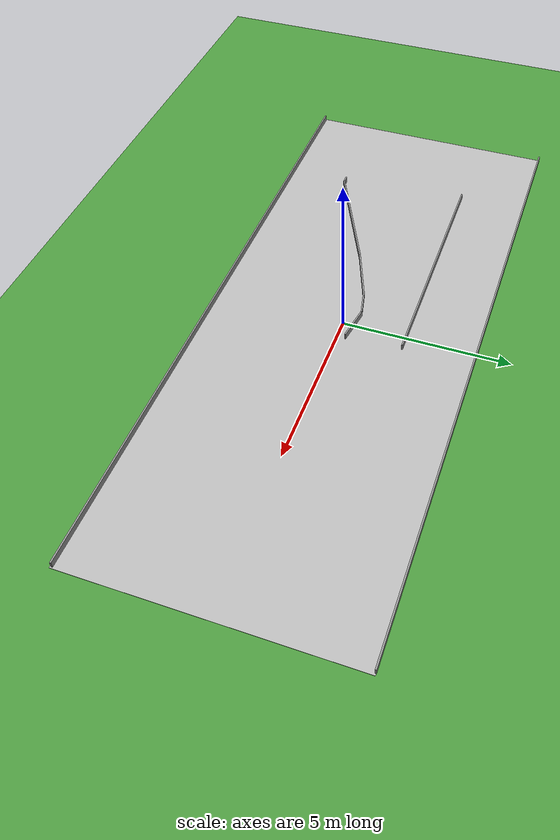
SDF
<sdf version="1.5">
 <world name="default">
  <model name="ground_grass">
   <static>1</static>
   <link name="ground_grass">
    <collision name="collision">
     <geometry><plane><normal>0 0 1</normal><size>50 50</size></plane></geometry>
     <surface><friction><ode><mu>100</mu><mu2>50</mu2></ode></friction></surface>
    </collision>
    <visual name="visual_ground">
     <cast_shadows>0</cast_shadows>
     <pose>0 0 0.005 0 -0 0</pose>
     <geometry><plane><normal>0 0 1</normal><size>50 50</size></plane></geometry>
     <material>
      <script>
       <uri>model://ground_grass/materials/scripts</uri>
       <uri>model://ground_grass/materials/textures</uri>
       <name>Floor/Grass</name>
      </script>
     </material>
    </visual>
    <velocity_decay><linear>0</linear><angular>0</angular></velocity_decay>
   </link>
  </model>
  <model name="ucsd_track_v1">
   <static>1</static>
   <link name="link_track">
    <collision name="collision">
     <geometry><plane><normal>0 0 1</normal><size>19.431 8.0264</size></plane></geometry>
     <surface><friction><ode><mu>100</mu><mu2>50</mu2></ode></friction></surface>
    </collision>
    <visual name="visual_ground">
     <cast_shadows>0</cast_shadows>
     <pose>0 0 0.005 0 -0 0</pose>
     <geometry><plane><normal>0 0 1</normal><size>19.431 8.0264</size></plane></geometry>
     <material>
      <script>
       <uri>model://ucsd_track_v1/materials/scripts</uri>
       <uri>model://ucsd_track_v1/materials/textures</uri>
       <name>Floor/Image</name>
      </script>
     </material>
    </visual>
    <velocity_decay><linear>0</linear><angular>0</angular></velocity_decay>
   </link>
   <pose>0 0 0.001 0 -0 0</pose>
  </model>
  <model name="grey_wall_3">
   <link name="link">
    <pose>0.713484 -0.011654 1.4 0 -0 0</pose>
    <inertial>
     <inertia><ixx>nan</ixx><ixy>0</ixy><ixz>0</ixz><iyy>nan</iyy><iyz>0</iyz><izz>nan</izz></inertia>
     <mass>0</mass>
    </inertial>
    <visual name="visual">
     <cast_shadows>0</cast_shadows>
     <geometry><box><size>19.3332 0.043266 0.226147</size></box></geometry>
     <material>
      <script>
       <uri>model://grey_wall/materials/scripts</uri>
       <uri>model://grey_wall/materials/textures</uri>
       <name>vrc/grey_wall</name>
      </script>
      <ambient>1 1 1 1</ambient>
      <diffuse>1 1 1 1</diffuse>
      <specular>0 0 0 1</specular>
      <emissive>0 0 0 1</emissive>
     </material>
    </visual>
    <collision name="collision">
     <geometry><box><size>19.3332 0.043266 0.226147</size></box></geometry>
     <surface>
      <friction>
       <ode><mu>1</mu><mu2>1</mu2><fdir1>0 0 0</fdir1><slip1>0</slip1><slip2>0</slip2></ode>
       <torsional>
        <coefficient>1</coefficient>
        <patch_radius>0</patch_radius>
        <surface_radius>0</surface_radius>
        <use_patch_radius>1</use_patch_radius>
        <ode><slip>0</slip></ode>
       </torsional>
      </friction>
      <bounce><restitution_coefficient>0</restitution_coefficient><threshold>1e+06</threshold></bounce>
      <contact>
       <collide_without_contact>0</collide_without_contact>
       <collide_without_contact_bitmask>1</collide_without_contact_bitmask>
       <collide_bitmask>1</collide_bitmask>
       <ode>
        <soft_cfm>0</soft_cfm>
        <soft_erp>0.2</soft_erp>
        <kp>1e+13</kp>
        <kd>1</kd>
        <max_vel>0.01</max_vel>
        <min_depth>0</min_depth>
       </ode>
       <bullet>
        <split_impulse>1</split_impulse>
        <split_impulse_penetration_threshold>-0.01</split_impulse_penetration_threshold>
        <soft_cfm>0</soft_cfm>
        <soft_erp>0.2</soft_erp>
        <kp>1e+13</kp>
        <kd>1</kd>
       </bullet>
      </contact>
     </surface>
    </collision>
   </link>
   <static>1</static>
   <pose>-0.716038 4.0109 -1.30508 0 -0 0</pose>
  </model>
  <model name="grey_wall_4">
   <link name="link">
    <pose>0.713484 -0.011654 1.4 0 -0 0</pose>
    <inertial>
     <inertia><ixx>nan</ixx><ixy>0</ixy><ixz>0</ixz><iyy>nan</iyy><iyz>0</iyz><izz>nan</izz></inertia>
     <mass>0</mass>
    </inertial>
    <visual name="visual">
     <cast_shadows>0</cast_shadows>
     <geometry><box><size>19.3332 0.043266 0.226147</size></box></geometry>
     <material>
      <script>
       <uri>model://grey_wall/materials/scripts</uri>
       <uri>model://grey_wall/materials/textures</uri>
       <name>vrc/grey_wall</name>
      </script>
      <ambient>1 1 1 1</ambient>
      <diffuse>1 1 1 1</diffuse>
      <specular>0 0 0 1</specular>
      <emissive>0 0 0 1</emissive>
     </material>
    </visual>
    <collision name="collision">
     <geometry><box><size>19.3332 0.043266 0.226147</size></box></geometry>
     <surface>
      <friction>
       <ode><mu>1</mu><mu2>1</mu2><fdir1>0 0 0</fdir1><slip1>0</slip1><slip2>0</slip2></ode>
       <torsional>
        <coefficient>1</coefficient>
        <patch_radius>0</patch_radius>
        <surface_radius>0</surface_radius>
        <use_patch_radius>1</use_patch_radius>
        <ode><slip>0</slip></ode>
       </torsional>
      </friction>
      <bounce><restitution_coefficient>0</restitution_coefficient><threshold>1e+06</threshold></bounce>
      <contact>
       <collide_without_contact>0</collide_without_contact>
       <collide_without_contact_bitmask>1</collide_without_contact_bitmask>
       <collide_bitmask>1</collide_bitmask>
       <ode>
        <soft_cfm>0</soft_cfm>
        <soft_erp>0.2</soft_erp>
        <kp>1e+13</kp>
        <kd>1</kd>
        <max_vel>0.01</max_vel>
        <min_depth>0</min_depth>
       </ode>
       <bullet>
        <split_impulse>1</split_impulse>
        <split_impulse_penetration_threshold>-0.01</split_impulse_penetration_threshold>
        <soft_cfm>0</soft_cfm>
        <soft_erp>0.2</soft_erp>
        <kp>1e+13</kp>
        <kd>1</kd>
       </bullet>
      </contact>
     </surface>
    </collision>
   </link>
   <static>1</static>
   <pose>-0.701966 -3.93959 -1.30508 0 -0 0</pose>
  </model>
  <model name="grey_wall_25">
   <link name="link">
    <pose>0.017817 -0.013769 1.4 0 -0 0.455224</pose>
    <inertial>
     <inertia><ixx>nan</ixx><ixy>0</ixy><ixz>0</ixz><iyy>nan</iyy><iyz>0</iyz><izz>nan</izz></inertia>
     <mass>0</mass>
    </inertial>
    <visual name="visual">
     <cast_shadows>0</cast_shadows>
     <geometry><box><size>3.81606 0.043266 0.226147</size></box></geometry>
     <material>
      <script>
       <uri>model://grey_wall/materials/scripts</uri>
       <uri>model://grey_wall/materials/textures</uri>
       <name>vrc/grey_wall</name>
      </script>
      <ambient>1 1 1 1</ambient>
      <diffuse>1 1 1 1</diffuse>
      <specular>0 0 0 1</specular>
      <emissive>0 0 0 1</emissive>
     </material>
    </visual>
    <collision name="collision">
     <geometry><box><size>3.81606 0.043266 0.226147</size></box></geometry>
     <surface>
      <friction>
       <ode><mu>1</mu><mu2>1</mu2><fdir1>0 0 0</fdir1><slip1>0</slip1><slip2>0</slip2></ode>
       <torsional>
        <coefficient>1</coefficient>
        <patch_radius>0</patch_radius>
        <surface_radius>0</surface_radius>
        <use_patch_radius>1</use_patch_radius>
        <ode><slip>0</slip></ode>
       </torsional>
      </friction>
      <bounce><restitution_coefficient>0</restitution_coefficient><threshold>1e+06</threshold></bounce>
      <contact>
       <collide_without_contact>0</collide_without_contact>
       <collide_without_contact_bitmask>1</collide_without_contact_bitmask>
       <collide_bitmask>1</collide_bitmask>
       <ode>
        <soft_cfm>0</soft_cfm>
        <soft_erp>0.2</soft_erp>
        <kp>1e+13</kp>
        <kd>1</kd>
        <max_vel>0.01</max_vel>
        <min_depth>0</min_depth>
       </ode>
       <bullet>
        <split_impulse>1</split_impulse>
        <split_impulse_penetration_threshold>-0.01</split_impulse_penetration_threshold>
        <soft_cfm>0</soft_cfm>
        <soft_erp>0.2</soft_erp>
        <kp>1e+13</kp>
        <kd>1</kd>
       </bullet>
      </contact>
     </surface>
    </collision>
   </link>
   <static>1</static>
   <pose>-4.49945 -1.20909 -1.30331 0 -0 0</pose>
  </model>
  <model name="grey_wall_26">
   <link name="link">
    <pose>0.696537 0.076716 1.4 0 -0 0.222578</pose>
    <inertial>
     <inertia><ixx>nan</ixx><ixy>0</ixy><ixz>0</ixz><iyy>nan</iyy><iyz>0</iyz><izz>nan</izz></inertia>
     <mass>0</mass>
    </inertial>
    <visual name="visual">
     <cast_shadows>0</cast_shadows>
     <geometry><box><size>0.800766 0.043266 0.226147</size></box></geometry>
     <material>
      <script>
       <uri>model://grey_wall/materials/scripts</uri>
       <uri>model://grey_wall/materials/textures</uri>
       <name>vrc/grey_wall</name>
      </script>
      <ambient>1 1 1 1</ambient>
      <diffuse>1 1 1 1</diffuse>
      <specular>0 0 0 1</specular>
      <emissive>0 0 0 1</emissive>
     </material>
    </visual>
    <collision name="collision">
     <geometry><box><size>0.800766 0.043266 0.226147</size></box></geometry>
     <surface>
      <friction>
       <ode><mu>1</mu><mu2>1</mu2><fdir1>0 0 0</fdir1><slip1>0</slip1><slip2>0</slip2></ode>
       <torsional>
        <coefficient>1</coefficient>
        <patch_radius>0</patch_radius>
        <surface_radius>0</surface_radius>
        <use_patch_radius>1</use_patch_radius>
        <ode><slip>0</slip></ode>
       </torsional>
      </friction>
      <bounce><restitution_coefficient>0</restitution_coefficient><threshold>1e+06</threshold></bounce>
      <contact>
       <collide_without_contact>0</collide_without_contact>
       <collide_without_contact_bitmask>1</collide_without_contact_bitmask>
       <collide_bitmask>1</collide_bitmask>
       <ode>
        <soft_cfm>0</soft_cfm>
        <soft_erp>0.2</soft_erp>
        <kp>1e+13</kp>
        <kd>1</kd>
        <max_vel>0.01</max_vel>
        <min_depth>0</min_depth>
       </ode>
       <bullet>
        <split_impulse>1</split_impulse>
        <split_impulse_penetration_threshold>-0.01</split_impulse_penetration_threshold>
        <soft_cfm>0</soft_cfm>
        <soft_erp>0.2</soft_erp>
        <kp>1e+13</kp>
        <kd>1</kd>
       </bullet>
      </contact>
     </surface>
    </collision>
   </link>
   <static>1</static>
   <pose>-1.52613 0.248203 -1.30539 0 -0 0</pose>
  </model>
  <model name="grey_wall_27">
   <link name="link">
    <pose>0.075205 -0.060141 1.4 0 -0 0.379695</pose>
    <inertial>
     <inertia><ixx>nan</ixx><ixy>0</ixy><ixz>0</ixz><iyy>nan</iyy><iyz>0</iyz><izz>nan</izz></inertia>
     <mass>0</mass>
    </inertial>
    <visual name="visual">
     <cast_shadows>0</cast_shadows>
     <geometry><box><size>1.72288 0.043266 0.226147</size></box></geometry>
     <material>
      <script>
       <uri>model://grey_wall/materials/scripts</uri>
       <uri>model://grey_wall/materials/textures</uri>
       <name>vrc/grey_wall</name>
      </script>
      <ambient>1 1 1 1</ambient>
      <diffuse>1 1 1 1</diffuse>
      <specular>0 0 0 1</specular>
      <emissive>0 0 0 1</emissive>
     </material>
    </visual>
    <collision name="collision">
     <geometry><box><size>1.72288 0.043266 0.226147</size></box></geometry>
     <surface>
      <friction>
       <ode><mu>1</mu><mu2>1</mu2><fdir1>0 0 0</fdir1><slip1>0</slip1><slip2>0</slip2></ode>
       <torsional>
        <coefficient>1</coefficient>
        <patch_radius>0</patch_radius>
        <surface_radius>0</surface_radius>
        <use_patch_radius>1</use_patch_radius>
        <ode><slip>0</slip></ode>
       </torsional>
      </friction>
      <bounce><restitution_coefficient>0</restitution_coefficient><threshold>1e+06</threshold></bounce>
      <contact>
       <collide_without_contact>0</collide_without_contact>
       <collide_without_contact_bitmask>1</collide_without_contact_bitmask>
       <collide_bitmask>1</collide_bitmask>
       <ode>
        <soft_cfm>0</soft_cfm>
        <soft_erp>0.2</soft_erp>
        <kp>1e+13</kp>
        <kd>1</kd>
        <max_vel>0.01</max_vel>
        <min_depth>0</min_depth>
       </ode>
       <bullet>
        <split_impulse>1</split_impulse>
        <split_impulse_penetration_threshold>-0.01</split_impulse_penetration_threshold>
        <soft_cfm>0</soft_cfm>
        <soft_erp>0.2</soft_erp>
        <kp>1e+13</kp>
        <kd>1</kd>
       </bullet>
      </contact>
     </surface>
    </collision>
   </link>
   <static>1</static>
   <pose>-2.07457 -0.020126 -1.30331 0 -0 0</pose>
  </model>
  <model name="grey_wall_30">
   <link name="link">
    <pose>0.178472 -0.112837 1.4 0 0 -0.161294</pose>
    <inertial>
     <inertia><ixx>nan</ixx><ixy>0</ixy><ixz>0</ixz><iyy>nan</iyy><iyz>0</iyz><izz>nan</izz></inertia>
     <mass>0</mass>
    </inertial>
    <visual name="visual">
     <cast_shadows>0</cast_shadows>
     <geometry><box><size>1.0471 0.043266 0.226147</size></box></geometry>
     <material>
      <script>
       <uri>model://grey_wall/materials/scripts</uri>
       <uri>model://grey_wall/materials/textures</uri>
       <name>vrc/grey_wall</name>
      </script>
      <ambient>1 1 1 1</ambient>
      <diffuse>1 1 1 1</diffuse>
      <specular>0 0 0 1</specular>
      <emissive>0 0 0 1</emissive>
     </material>
    </visual>
    <collision name="collision">
     <geometry><box><size>1.0471 0.043266 0.226147</size></box></geometry>
     <surface>
      <friction>
       <ode><mu>1</mu><mu2>1</mu2><fdir1>0 0 0</fdir1><slip1>0</slip1><slip2>0</slip2></ode>
       <torsional>
        <coefficient>1</coefficient>
        <patch_radius>0</patch_radius>
        <surface_radius>0</surface_radius>
        <use_patch_radius>1</use_patch_radius>
        <ode><slip>0</slip></ode>
       </torsional>
      </friction>
      <bounce><restitution_coefficient>0</restitution_coefficient><threshold>1e+06</threshold></bounce>
      <contact>
       <collide_without_contact>0</collide_without_contact>
       <collide_without_contact_bitmask>1</collide_without_contact_bitmask>
       <collide_bitmask>1</collide_bitmask>
       <ode>
        <soft_cfm>0</soft_cfm>
        <soft_erp>0.2</soft_erp>
        <kp>1e+13</kp>
        <kd>1</kd>
        <max_vel>0.01</max_vel>
        <min_depth>0</min_depth>
       </ode>
       <bullet>
        <split_impulse>1</split_impulse>
        <split_impulse_penetration_threshold>-0.01</split_impulse_penetration_threshold>
        <soft_cfm>0</soft_cfm>
        <soft_erp>0.2</soft_erp>
        <kp>1e+13</kp>
        <kd>1</kd>
       </bullet>
      </contact>
     </surface>
    </collision>
   </link>
   <static>1</static>
   <pose>-0.114316 0.442475 -1.30539 0 -0 0</pose>
  </model>
  <model name="grey_wall_16">
   <link name="link">
    <pose>0 0 1.4 0 -0 0</pose>
    <inertial>
     <inertia><ixx>nan</ixx><ixy>0</ixy><ixz>0</ixz><iyy>nan</iyy><iyz>0</iyz><izz>nan</izz></inertia>
     <mass>0</mass>
    </inertial>
    <visual name="visual">
     <cast_shadows>0</cast_shadows>
     <geometry><box><size>7.20978 0.043266 0.226147</size></box></geometry>
     <material>
      <script>
       <uri>model://grey_wall/materials/scripts</uri>
       <uri>model://grey_wall/materials/textures</uri>
       <name>vrc/grey_wall</name>
      </script>
      <ambient>1 1 1 1</ambient>
      <diffuse>1 1 1 1</diffuse>
      <specular>0 0 0 1</specular>
      <emissive>0 0 0 1</emissive>
     </material>
    </visual>
    <collision name="collision">
     <geometry><box><size>7.20978 0.043266 0.226147</size></box></geometry>
     <surface>
      <friction>
       <ode><mu>1</mu><mu2>1</mu2><fdir1>0 0 0</fdir1><slip1>0</slip1><slip2>0</slip2></ode>
       <torsional>
        <coefficient>1</coefficient>
        <patch_radius>0</patch_radius>
        <surface_radius>0</surface_radius>
        <use_patch_radius>1</use_patch_radius>
        <ode><slip>0</slip></ode>
       </torsional>
      </friction>
      <bounce><restitution_coefficient>0</restitution_coefficient><threshold>1e+06</threshold></bounce>
      <contact>
       <collide_without_contact>0</collide_without_contact>
       <collide_without_contact_bitmask>1</collide_without_contact_bitmask>
       <collide_bitmask>1</collide_bitmask>
       <ode>
        <soft_cfm>0</soft_cfm>
        <soft_erp>0.2</soft_erp>
        <kp>1e+13</kp>
        <kd>1</kd>
        <max_vel>0.01</max_vel>
        <min_depth>0</min_depth>
       </ode>
       <bullet>
        <split_impulse>1</split_impulse>
        <split_impulse_penetration_threshold>-0.01</split_impulse_penetration_threshold>
        <soft_cfm>0</soft_cfm>
        <soft_erp>0.2</soft_erp>
        <kp>1e+13</kp>
        <kd>1</kd>
       </bullet>
      </contact>
     </surface>
    </collision>
   </link>
   <static>1</static>
   <pose>-3.148 1.91993 -1.30759 0 -0 0</pose>
  </model>
  <model name="grey_wall_44">
   <link name="link">
    <pose>0.137337 -0.016241 1.4 0 0 -0.01029</pose>
    <inertial>
     <inertia><ixx>nan</ixx><ixy>0</ixy><ixz>0</ixz><iyy>nan</iyy><iyz>0</iyz><izz>nan</izz></inertia>
     <mass>0</mass>
    </inertial>
    <visual name="visual">
     <cast_shadows>0</cast_shadows>
     <geometry><box><size>0.231964 0.043266 0.226147</size></box></geometry>
     <material>
      <script>
       <uri>model://grey_wall/materials/scripts</uri>
       <uri>model://grey_wall/materials/textures</uri>
       <name>vrc/grey_wall</name>
      </script>
      <ambient>1 1 1 1</ambient>
      <diffuse>1 1 1 1</diffuse>
      <specular>0 0 0 1</specular>
      <emissive>0 0 0 1</emissive>
     </material>
    </visual>
    <collision name="collision">
     <geometry><box><size>0.231964 0.043266 0.226147</size></box></geometry>
     <surface>
      <friction>
       <ode><mu>1</mu><mu2>1</mu2><fdir1>0 0 0</fdir1><slip1>0</slip1><slip2>0</slip2></ode>
       <torsional>
        <coefficient>1</coefficient>
        <patch_radius>0</patch_radius>
        <surface_radius>0</surface_radius>
        <use_patch_radius>1</use_patch_radius>
        <ode><slip>0</slip></ode>
       </torsional>
      </friction>
      <bounce><restitution_coefficient>0</restitution_coefficient><threshold>1e+06</threshold></bounce>
      <contact>
       <collide_without_contact>0</collide_without_contact>
       <collide_without_contact_bitmask>1</collide_without_contact_bitmask>
       <collide_bitmask>1</collide_bitmask>
       <ode>
        <soft_cfm>0</soft_cfm>
        <soft_erp>0.2</soft_erp>
        <kp>1e+13</kp>
        <kd>1</kd>
        <max_vel>0.01</max_vel>
        <min_depth>0</min_depth>
       </ode>
       <bullet>
        <split_impulse>1</split_impulse>
        <split_impulse_penetration_threshold>-0.01</split_impulse_penetration_threshold>
        <soft_cfm>0</soft_cfm>
        <soft_erp>0.2</soft_erp>
        <kp>1e+13</kp>
        <kd>1</kd>
       </bullet>
      </contact>
     </surface>
    </collision>
   </link>
   <static>1</static>
   <pose>-6.43024 -2.03922 -1.30539 0 -0 0</pose>
  </model>
 </world>
</sdf>
